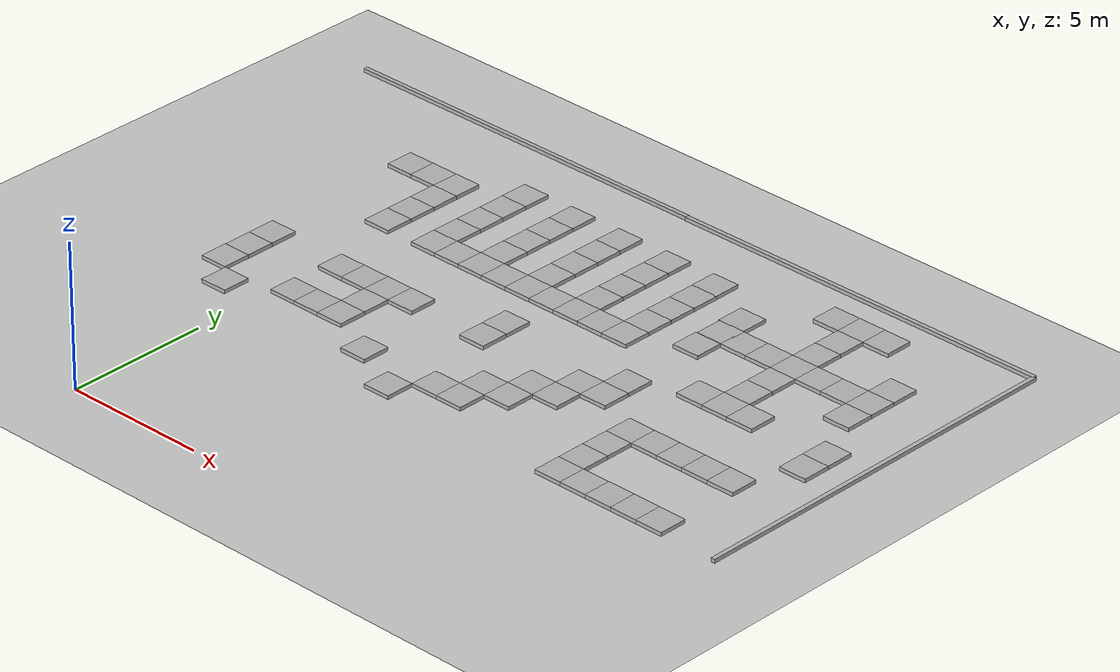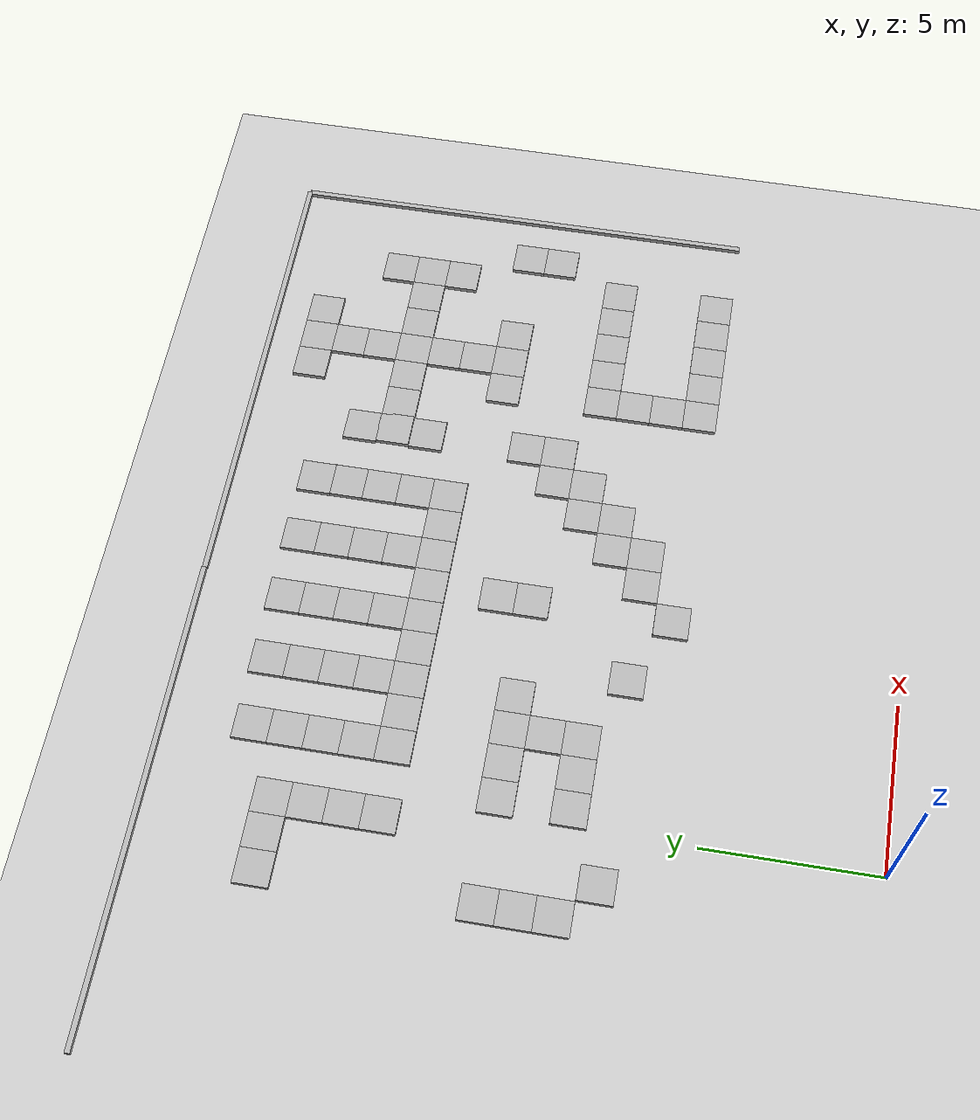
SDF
<sdf version="1.7">
 <world name="default">
  <model name="ground_plane">
   <static>1</static>
   <link name="link">
    <collision name="collision">
     <geometry><plane><normal>0 0 1</normal><size>100 100</size></plane></geometry>
     <surface>
      <contact><collide_bitmask>65535</collide_bitmask></contact>
      <friction><ode><mu>100</mu><mu2>50</mu2></ode></friction>
     </surface>
    </collision>
    <visual name="visual">
     <cast_shadows>0</cast_shadows>
     <geometry><plane><normal>0 0 1</normal><size>100 100</size></plane></geometry>
     <material>
      <script><uri>file://media/materials/scripts/gazebo.material</uri><name>Gazebo/Grey</name></script>
     </material>
    </visual>
   </link>
  </model>
  <model name="concrete_barrier_14m_3">
   <static>1</static>
   <link name="link">
    <collision name="concrete_barrier_14m_01">
     <pose>-0 0 0.3 0 -0 0</pose>
     <geometry><box><size>14 0.15 0.6</size></box></geometry>
    </collision>
    <visual name="concrete_barrier_14m_visual">
     <geometry><mesh><uri>model://concrete_barrier_14m/meshes/concrete_barrier_14m.dae</uri></mesh></geometry>
    </visual>
   </link>
   <pose>20 13 -3.1e-05 0 -0 0</pose>
  </model>
  <model name="concrete_barrier_14m_4">
   <static>1</static>
   <link name="link">
    <collision name="concrete_barrier_14m_01">
     <pose>-0 0 0.3 0 -0 0</pose>
     <geometry><box><size>14 0.15 0.6</size></box></geometry>
    </collision>
    <visual name="concrete_barrier_14m_visual">
     <geometry><mesh><uri>model://concrete_barrier_14m/meshes/concrete_barrier_14m.dae</uri></mesh></geometry>
    </visual>
   </link>
   <pose>13 20 0 0 0 -1.56953</pose>
  </model>
  <model name="concrete_cube_1m_18">
   <static>1</static>
   <link name="link">
    <collision name="concrete_cube_1m">
     <pose>-0 0 0.3 0 -0 0</pose>
     <geometry><box><size>1 1 0.6</size></box></geometry>
    </collision>
    <visual name="concrete_cube_1m_visual">
     <geometry><mesh><uri>model://concrete_cube_1m/meshes/concrete_cube_1m.dae</uri></mesh></geometry>
    </visual>
   </link>
   <pose>8.5 8.5 0 0 -0 0</pose>
  </model>
  <model name="concrete_cube_1m_19">
   <static>1</static>
   <link name="link">
    <collision name="concrete_cube_1m">
     <pose>-0 0 0.3 0 -0 0</pose>
     <geometry><box><size>1 1 0.6</size></box></geometry>
    </collision>
    <visual name="concrete_cube_1m_visual">
     <geometry><mesh><uri>model://concrete_cube_1m/meshes/concrete_cube_1m.dae</uri></mesh></geometry>
    </visual>
   </link>
   <pose>7.5 7.5 0 0 -0 0</pose>
  </model>
  <model name="concrete_cube_1m_20">
   <static>1</static>
   <link name="link">
    <collision name="concrete_cube_1m">
     <pose>-0 0 0.3 0 -0 0</pose>
     <geometry><box><size>1 1 0.6</size></box></geometry>
    </collision>
    <visual name="concrete_cube_1m_visual">
     <geometry><mesh><uri>model://concrete_cube_1m/meshes/concrete_cube_1m.dae</uri></mesh></geometry>
    </visual>
   </link>
   <pose>6.5 6.5 0 0 -0 0</pose>
  </model>
  <model name="concrete_cube_1m_24">
   <static>1</static>
   <link name="link">
    <collision name="concrete_cube_1m">
     <pose>-0 0 0.3 0 -0 0</pose>
     <geometry><box><size>1 1 0.6</size></box></geometry>
    </collision>
    <visual name="concrete_cube_1m_visual">
     <geometry><mesh><uri>model://concrete_cube_1m/meshes/concrete_cube_1m.dae</uri></mesh></geometry>
    </visual>
   </link>
   <pose>4.5 7.5 0 0 -0 0</pose>
  </model>
  <model name="concrete_cube_1m_36">
   <static>1</static>
   <link name="link">
    <collision name="concrete_cube_1m">
     <pose>-0 0 0.3 0 -0 0</pose>
     <geometry><box><size>1 1 0.6</size></box></geometry>
    </collision>
    <visual name="concrete_cube_1m_visual">
     <geometry><mesh><uri>model://concrete_cube_1m/meshes/concrete_cube_1m.dae</uri></mesh></geometry>
    </visual>
   </link>
   <pose>2.5 8.5 0 0 -0 0</pose>
  </model>
  <model name="concrete_cube_1m_37">
   <static>1</static>
   <link name="link">
    <collision name="concrete_cube_1m">
     <pose>-0 0 0.3 0 -0 0</pose>
     <geometry><box><size>1 1 0.6</size></box></geometry>
    </collision>
    <visual name="concrete_cube_1m_visual">
     <geometry><mesh><uri>model://concrete_cube_1m/meshes/concrete_cube_1m.dae</uri></mesh></geometry>
    </visual>
   </link>
   <pose>1.5 8.5 0 0 -0 0</pose>
  </model>
  <model name="concrete_cube_1m_38">
   <static>1</static>
   <link name="link">
    <collision name="concrete_cube_1m">
     <pose>-0 0 0.3 0 -0 0</pose>
     <geometry><box><size>1 1 0.6</size></box></geometry>
    </collision>
    <visual name="concrete_cube_1m_visual">
     <geometry><mesh><uri>model://concrete_cube_1m/meshes/concrete_cube_1m.dae</uri></mesh></geometry>
    </visual>
   </link>
   <pose>0.5 8.5 0 0 -0 0</pose>
  </model>
  <model name="concrete_cube_1m_59">
   <static>1</static>
   <link name="link">
    <collision name="concrete_cube_1m">
     <pose>-0 0 0.3 0 -0 0</pose>
     <geometry><box><size>1 1 0.6</size></box></geometry>
    </collision>
    <visual name="concrete_cube_1m_visual">
     <geometry><mesh><uri>model://concrete_cube_1m/meshes/concrete_cube_1m.dae</uri></mesh></geometry>
    </visual>
   </link>
   <pose>-1.46855 7.49755 0 0 -0 0</pose>
  </model>
  <model name="concrete_cube_1m_113">
   <static>1</static>
   <link name="link">
    <collision name="concrete_cube_1m">
     <pose>-0 0 0.3 0 -0 0</pose>
     <geometry><box><size>1 1 0.6</size></box></geometry>
    </collision>
    <visual name="concrete_cube_1m_visual">
     <geometry><mesh><uri>model://concrete_cube_1m/meshes/concrete_cube_1m.dae</uri></mesh></geometry>
    </visual>
   </link>
   <pose>14.5 14.5 0 0 -0 0</pose>
  </model>
  <model name="concrete_cube_1m_114">
   <static>1</static>
   <link name="link">
    <collision name="concrete_cube_1m">
     <pose>-0 0 0.3 0 -0 0</pose>
     <geometry><box><size>1 1 0.6</size></box></geometry>
    </collision>
    <visual name="concrete_cube_1m_visual">
     <geometry><mesh><uri>model://concrete_cube_1m/meshes/concrete_cube_1m.dae</uri></mesh></geometry>
    </visual>
   </link>
   <pose>14.5 13.5 0 0 -0 0</pose>
  </model>
  <model name="concrete_cube_1m_123">
   <static>1</static>
   <link name="link">
    <collision name="concrete_cube_1m">
     <pose>-0 0 0.3 0 -0 0</pose>
     <geometry><box><size>1 1 0.6</size></box></geometry>
    </collision>
    <visual name="concrete_cube_1m_visual">
     <geometry><mesh><uri>model://concrete_cube_1m/meshes/concrete_cube_1m.dae</uri></mesh></geometry>
    </visual>
   </link>
   <pose>9.5 9.5 0 0 -0 0</pose>
  </model>
  <model name="concrete_cube_1m_124">
   <static>1</static>
   <link name="link">
    <collision name="concrete_cube_1m">
     <pose>-0 0 0.3 0 -0 0</pose>
     <geometry><box><size>1 1 0.6</size></box></geometry>
    </collision>
    <visual name="concrete_cube_1m_visual">
     <geometry><mesh><uri>model://concrete_cube_1m/meshes/concrete_cube_1m.dae</uri></mesh></geometry>
    </visual>
   </link>
   <pose>10.5 10.5 0 0 -0 0</pose>
  </model>
  <model name="concrete_cube_1m_125">
   <static>1</static>
   <link name="link">
    <collision name="concrete_cube_1m">
     <pose>-0 0 0.3 0 -0 0</pose>
     <geometry><box><size>1 1 0.6</size></box></geometry>
    </collision>
    <visual name="concrete_cube_1m_visual">
     <geometry><mesh><uri>model://concrete_cube_1m/meshes/concrete_cube_1m.dae</uri></mesh></geometry>
    </visual>
   </link>
   <pose>10.5 9.5 0 0 -0 0</pose>
  </model>
  <model name="concrete_cube_1m_126">
   <static>1</static>
   <link name="link">
    <collision name="concrete_cube_1m">
     <pose>-0 0 0.3 0 -0 0</pose>
     <geometry><box><size>1 1 0.6</size></box></geometry>
    </collision>
    <visual name="concrete_cube_1m_visual">
     <geometry><mesh><uri>model://concrete_cube_1m/meshes/concrete_cube_1m.dae</uri></mesh></geometry>
    </visual>
   </link>
   <pose>9.5 8.5 0 0 -0 0</pose>
  </model>
  <model name="concrete_cube_1m_127">
   <static>1</static>
   <link name="link">
    <collision name="concrete_cube_1m">
     <pose>-0 0 0.3 0 -0 0</pose>
     <geometry><box><size>1 1 0.6</size></box></geometry>
    </collision>
    <visual name="concrete_cube_1m_visual">
     <geometry><mesh><uri>model://concrete_cube_1m/meshes/concrete_cube_1m.dae</uri></mesh></geometry>
    </visual>
   </link>
   <pose>8.5 7.5 0 0 -0 0</pose>
  </model>
  <model name="concrete_cube_1m_128">
   <static>1</static>
   <link name="link">
    <collision name="concrete_cube_1m">
     <pose>-0 0 0.3 0 -0 0</pose>
     <geometry><box><size>1 1 0.6</size></box></geometry>
    </collision>
    <visual name="concrete_cube_1m_visual">
     <geometry><mesh><uri>model://concrete_cube_1m/meshes/concrete_cube_1m.dae</uri></mesh></geometry>
    </visual>
   </link>
   <pose>11.5 10.5 0 0 -0 0</pose>
  </model>
  <model name="concrete_cube_1m_129">
   <static>1</static>
   <link name="link">
    <collision name="concrete_cube_1m">
     <pose>-0 0 0.3 0 -0 0</pose>
     <geometry><box><size>1 1 0.6</size></box></geometry>
    </collision>
    <visual name="concrete_cube_1m_visual">
     <geometry><mesh><uri>model://concrete_cube_1m/meshes/concrete_cube_1m.dae</uri></mesh></geometry>
    </visual>
   </link>
   <pose>11.5 11.5 0 0 -0 0</pose>
  </model>
  <model name="concrete_cube_1m_130">
   <static>1</static>
   <link name="link">
    <collision name="concrete_cube_1m">
     <pose>-0 0 0.3 0 -0 0</pose>
     <geometry><box><size>1 1 0.6</size></box></geometry>
    </collision>
    <visual name="concrete_cube_1m_visual">
     <geometry><mesh><uri>model://concrete_cube_1m/meshes/concrete_cube_1m.dae</uri></mesh></geometry>
    </visual>
   </link>
   <pose>2.5 9.5 0 0 -0 0</pose>
  </model>
  <model name="concrete_cube_1m_131">
   <static>1</static>
   <link name="link">
    <collision name="concrete_cube_1m">
     <pose>-0 0 0.3 0 -0 0</pose>
     <geometry><box><size>1 1 0.6</size></box></geometry>
    </collision>
    <visual name="concrete_cube_1m_visual">
     <geometry><mesh><uri>model://concrete_cube_1m/meshes/concrete_cube_1m.dae</uri></mesh></geometry>
    </visual>
   </link>
   <pose>2.5 10.5 0 0 -0 0</pose>
  </model>
  <model name="concrete_cube_1m_132">
   <static>1</static>
   <link name="link">
    <collision name="concrete_cube_1m">
     <pose>-0 0 0.3 0 -0 0</pose>
     <geometry><box><size>1 1 0.6</size></box></geometry>
    </collision>
    <visual name="concrete_cube_1m_visual">
     <geometry><mesh><uri>model://concrete_cube_1m/meshes/concrete_cube_1m.dae</uri></mesh></geometry>
    </visual>
   </link>
   <pose>1.5 10.5 0 0 -0 0</pose>
  </model>
  <model name="concrete_cube_1m_133">
   <static>1</static>
   <link name="link">
    <collision name="concrete_cube_1m">
     <pose>-0 0 0.3 0 -0 0</pose>
     <geometry><box><size>1 1 0.6</size></box></geometry>
    </collision>
    <visual name="concrete_cube_1m_visual">
     <geometry><mesh><uri>model://concrete_cube_1m/meshes/concrete_cube_1m.dae</uri></mesh></geometry>
    </visual>
   </link>
   <pose>0.5 10.5 0 0 -0 0</pose>
  </model>
  <model name="concrete_cube_1m_134">
   <static>1</static>
   <link name="link">
    <collision name="concrete_cube_1m">
     <pose>-0 0 0.3 0 -0 0</pose>
     <geometry><box><size>1 1 0.6</size></box></geometry>
    </collision>
    <visual name="concrete_cube_1m_visual">
     <geometry><mesh><uri>model://concrete_cube_1m/meshes/concrete_cube_1m.dae</uri></mesh></geometry>
    </visual>
   </link>
   <pose>3.5 10.5 0 0 -0 0</pose>
  </model>
  <model name="concrete_cube_1m_135">
   <static>1</static>
   <link name="link">
    <collision name="concrete_cube_1m">
     <pose>-0 0 0.3 0 -0 0</pose>
     <geometry><box><size>1 1 0.6</size></box></geometry>
    </collision>
    <visual name="concrete_cube_1m_visual">
     <geometry><mesh><uri>model://concrete_cube_1m/meshes/concrete_cube_1m.dae</uri></mesh></geometry>
    </visual>
   </link>
   <pose>9.5 13.5 0 0 -0 0</pose>
  </model>
  <model name="concrete_cube_1m_136">
   <static>1</static>
   <link name="link">
    <collision name="concrete_cube_1m">
     <pose>-0 0 0.3 0 -0 0</pose>
     <geometry><box><size>1 1 0.6</size></box></geometry>
    </collision>
    <visual name="concrete_cube_1m_visual">
     <geometry><mesh><uri>model://concrete_cube_1m/meshes/concrete_cube_1m.dae</uri></mesh></geometry>
    </visual>
   </link>
   <pose>8.5 13.5 0 0 -0 0</pose>
  </model>
  <model name="concrete_cube_1m_137">
   <static>1</static>
   <link name="link">
    <collision name="concrete_cube_1m">
     <pose>-0 0 0.3 0 -0 0</pose>
     <geometry><box><size>1 1 0.6</size></box></geometry>
    </collision>
    <visual name="concrete_cube_1m_visual">
     <geometry><mesh><uri>model://concrete_cube_1m/meshes/concrete_cube_1m.dae</uri></mesh></geometry>
    </visual>
   </link>
   <pose>7.5 13.5 0 0 -0 0</pose>
  </model>
  <model name="concrete_cube_1m_138">
   <static>1</static>
   <link name="link">
    <collision name="concrete_cube_1m">
     <pose>-0 0 0.3 0 -0 0</pose>
     <geometry><box><size>1 1 0.6</size></box></geometry>
    </collision>
    <visual name="concrete_cube_1m_visual">
     <geometry><mesh><uri>model://concrete_cube_1m/meshes/concrete_cube_1m.dae</uri></mesh></geometry>
    </visual>
   </link>
   <pose>6.5 13.5 0 0 -0 0</pose>
  </model>
  <model name="concrete_cube_1m_139">
   <static>1</static>
   <link name="link">
    <collision name="concrete_cube_1m">
     <pose>-0 0 0.3 0 -0 0</pose>
     <geometry><box><size>1 1 0.6</size></box></geometry>
    </collision>
    <visual name="concrete_cube_1m_visual">
     <geometry><mesh><uri>model://concrete_cube_1m/meshes/concrete_cube_1m.dae</uri></mesh></geometry>
    </visual>
   </link>
   <pose>5.5 13.5 0 0 -0 0</pose>
  </model>
  <model name="concrete_cube_1m_140">
   <static>1</static>
   <link name="link">
    <collision name="concrete_cube_1m">
     <pose>-0 0 0.3 0 -0 0</pose>
     <geometry><box><size>1 1 0.6</size></box></geometry>
    </collision>
    <visual name="concrete_cube_1m_visual">
     <geometry><mesh><uri>model://concrete_cube_1m/meshes/concrete_cube_1m.dae</uri></mesh></geometry>
    </visual>
   </link>
   <pose>4.5 13.5 0 0 -0 0</pose>
  </model>
  <model name="concrete_cube_1m_141">
   <static>1</static>
   <link name="link">
    <collision name="concrete_cube_1m">
     <pose>-0 0 0.3 0 -0 0</pose>
     <geometry><box><size>1 1 0.6</size></box></geometry>
    </collision>
    <visual name="concrete_cube_1m_visual">
     <geometry><mesh><uri>model://concrete_cube_1m/meshes/concrete_cube_1m.dae</uri></mesh></geometry>
    </visual>
   </link>
   <pose>3.5 13.5 0 0 -0 0</pose>
  </model>
  <model name="concrete_cube_1m_142">
   <static>1</static>
   <link name="link">
    <collision name="concrete_cube_1m">
     <pose>-0 0 0.3 0 -0 0</pose>
     <geometry><box><size>1 1 0.6</size></box></geometry>
    </collision>
    <visual name="concrete_cube_1m_visual">
     <geometry><mesh><uri>model://concrete_cube_1m/meshes/concrete_cube_1m.dae</uri></mesh></geometry>
    </visual>
   </link>
   <pose>2.5 13.5 0 0 -0 0</pose>
  </model>
  <model name="concrete_cube_1m_143">
   <static>1</static>
   <link name="link">
    <collision name="concrete_cube_1m">
     <pose>-0 0 0.3 0 -0 0</pose>
     <geometry><box><size>1 1 0.6</size></box></geometry>
    </collision>
    <visual name="concrete_cube_1m_visual">
     <geometry><mesh><uri>model://concrete_cube_1m/meshes/concrete_cube_1m.dae</uri></mesh></geometry>
    </visual>
   </link>
   <pose>6.5 10.5 0 0 -0 0</pose>
  </model>
  <model name="concrete_cube_1m_144">
   <static>1</static>
   <link name="link">
    <collision name="concrete_cube_1m">
     <pose>-0 0 0.3 0 -0 0</pose>
     <geometry><box><size>1 1 0.6</size></box></geometry>
    </collision>
    <visual name="concrete_cube_1m_visual">
     <geometry><mesh><uri>model://concrete_cube_1m/meshes/concrete_cube_1m.dae</uri></mesh></geometry>
    </visual>
   </link>
   <pose>6.5 11.5 0 0 -0 0</pose>
  </model>
  <model name="concrete_cube_1m_147">
   <static>1</static>
   <link name="link">
    <collision name="concrete_cube_1m">
     <pose>-0 0 0.3 0 -0 0</pose>
     <geometry><box><size>1 1 0.6</size></box></geometry>
    </collision>
    <visual name="concrete_cube_1m_visual">
     <geometry><mesh><uri>model://concrete_cube_1m/meshes/concrete_cube_1m.dae</uri></mesh></geometry>
    </visual>
   </link>
   <pose>13.5 6.5 0 0 -0 0</pose>
  </model>
  <model name="concrete_cube_1m_148">
   <static>1</static>
   <link name="link">
    <collision name="concrete_cube_1m">
     <pose>-0 0 0.3 0 -0 0</pose>
     <geometry><box><size>1 1 0.6</size></box></geometry>
    </collision>
    <visual name="concrete_cube_1m_visual">
     <geometry><mesh><uri>model://concrete_cube_1m/meshes/concrete_cube_1m.dae</uri></mesh></geometry>
    </visual>
   </link>
   <pose>13.5 7.5 0 0 -0 0</pose>
  </model>
  <model name="concrete_cube_1m_149">
   <static>1</static>
   <link name="link">
    <collision name="concrete_cube_1m">
     <pose>-0 0 0.3 0 -0 0</pose>
     <geometry><box><size>1 1 0.6</size></box></geometry>
    </collision>
    <visual name="concrete_cube_1m_visual">
     <geometry><mesh><uri>model://concrete_cube_1m/meshes/concrete_cube_1m.dae</uri></mesh></geometry>
    </visual>
   </link>
   <pose>13.5 8.5 0 0 -0 0</pose>
  </model>
  <model name="concrete_cube_1m_150">
   <static>1</static>
   <link name="link">
    <collision name="concrete_cube_1m">
     <pose>-0 0 0.3 0 -0 0</pose>
     <geometry><box><size>1 1 0.6</size></box></geometry>
    </collision>
    <visual name="concrete_cube_1m_visual">
     <geometry><mesh><uri>model://concrete_cube_1m/meshes/concrete_cube_1m.dae</uri></mesh></geometry>
    </visual>
   </link>
   <pose>13.5 9.5 0 0 -0 0</pose>
  </model>
  <model name="concrete_cube_1m_151">
   <static>1</static>
   <link name="link">
    <collision name="concrete_cube_1m">
     <pose>-0 0 0.3 0 -0 0</pose>
     <geometry><box><size>1 1 0.6</size></box></geometry>
    </collision>
    <visual name="concrete_cube_1m_visual">
     <geometry><mesh><uri>model://concrete_cube_1m/meshes/concrete_cube_1m.dae</uri></mesh></geometry>
    </visual>
   </link>
   <pose>1.5 13.5 0 0 -0 0</pose>
  </model>
  <model name="concrete_cube_1m_160">
   <static>1</static>
   <link name="link">
    <collision name="concrete_cube_1m">
     <pose>-0 0 0.3 0 -0 0</pose>
     <geometry><box><size>1 1 0.6</size></box></geometry>
    </collision>
    <visual name="concrete_cube_1m_visual">
     <geometry><mesh><uri>model://concrete_cube_1m/meshes/concrete_cube_1m.dae</uri></mesh></geometry>
    </visual>
   </link>
   <pose>-2.5 8.5 0 0 -0 0</pose>
  </model>
  <model name="concrete_cube_1m_161">
   <static>1</static>
   <link name="link">
    <collision name="concrete_cube_1m">
     <pose>-0 0 0.3 0 -0 0</pose>
     <geometry><box><size>1 1 0.6</size></box></geometry>
    </collision>
    <visual name="concrete_cube_1m_visual">
     <geometry><mesh><uri>model://concrete_cube_1m/meshes/concrete_cube_1m.dae</uri></mesh></geometry>
    </visual>
   </link>
   <pose>-2.5 9.5 0 0 -0 0</pose>
  </model>
  <model name="concrete_cube_1m_162">
   <static>1</static>
   <link name="link">
    <collision name="concrete_cube_1m">
     <pose>-0 0 0.3 0 -0 0</pose>
     <geometry><box><size>1 1 0.6</size></box></geometry>
    </collision>
    <visual name="concrete_cube_1m_visual">
     <geometry><mesh><uri>model://concrete_cube_1m/meshes/concrete_cube_1m.dae</uri></mesh></geometry>
    </visual>
   </link>
   <pose>-2.5 10.5 0 0 -0 0</pose>
  </model>
  <model name="concrete_cube_1m_181">
   <static>1</static>
   <link name="link">
    <collision name="concrete_cube_1m">
     <pose>-0 0 0.3 0 -0 0</pose>
     <geometry><box><size>1 1 0.6</size></box></geometry>
    </collision>
    <visual name="concrete_cube_1m_visual">
     <geometry><mesh><uri>model://concrete_cube_1m/meshes/concrete_cube_1m.dae</uri></mesh></geometry>
    </visual>
   </link>
   <pose>-0.5 13.5 0 0 -0 0</pose>
  </model>
  <model name="concrete_cube_1m_182">
   <static>1</static>
   <link name="link">
    <collision name="concrete_cube_1m">
     <pose>-0 0 0.3 0 -0 0</pose>
     <geometry><box><size>1 1 0.6</size></box></geometry>
    </collision>
    <visual name="concrete_cube_1m_visual">
     <geometry><mesh><uri>model://concrete_cube_1m/meshes/concrete_cube_1m.dae</uri></mesh></geometry>
    </visual>
   </link>
   <pose>-0.5 14.5 0 0 -0 0</pose>
  </model>
  <model name="concrete_barrier_14m_4_clone">
   <static>1</static>
   <link name="link">
    <collision name="concrete_barrier_14m_01">
     <pose>-0 0 0.3 0 -0 0</pose>
     <geometry><box><size>14 0.15 0.6</size></box></geometry>
    </collision>
    <visual name="concrete_barrier_14m_visual">
     <geometry><mesh><uri>model://concrete_barrier_14m/meshes/concrete_barrier_14m.dae</uri></mesh></geometry>
    </visual>
   </link>
   <pose>-1 20 0 0 0 -1.56953</pose>
  </model>
  <model name="concrete_cube_1m_246">
   <static>1</static>
   <link name="link">
    <collision name="concrete_cube_1m">
     <pose>-0 0 0.3 0 -0 0</pose>
     <geometry><box><size>1 1 0.6</size></box></geometry>
    </collision>
    <visual name="concrete_cube_1m_visual">
     <geometry><mesh><uri>model://concrete_cube_1m/meshes/concrete_cube_1m.dae</uri></mesh></geometry>
    </visual>
   </link>
   <pose>-0.5 15.5 0 0 -0 0</pose>
  </model>
  <model name="concrete_cube_1m_247">
   <static>1</static>
   <link name="link">
    <collision name="concrete_cube_1m">
     <pose>-0 0 0.3 0 -0 0</pose>
     <geometry><box><size>1 1 0.6</size></box></geometry>
    </collision>
    <visual name="concrete_cube_1m_visual">
     <geometry><mesh><uri>model://concrete_cube_1m/meshes/concrete_cube_1m.dae</uri></mesh></geometry>
    </visual>
   </link>
   <pose>-0.5 16.5 0 0 -0 0</pose>
  </model>
  <model name="concrete_cube_1m_248">
   <static>1</static>
   <link name="link">
    <collision name="concrete_cube_1m">
     <pose>-0 0 0.3 0 -0 0</pose>
     <geometry><box><size>1 1 0.6</size></box></geometry>
    </collision>
    <visual name="concrete_cube_1m_visual">
     <geometry><mesh><uri>model://concrete_cube_1m/meshes/concrete_cube_1m.dae</uri></mesh></geometry>
    </visual>
   </link>
   <pose>14.5 15.5 0 0 -0 0</pose>
  </model>
  <model name="concrete_cube_1m_249">
   <static>1</static>
   <link name="link">
    <collision name="concrete_cube_1m">
     <pose>-0 0 0.3 0 -0 0</pose>
     <geometry><box><size>1 1 0.6</size></box></geometry>
    </collision>
    <visual name="concrete_cube_1m_visual">
     <geometry><mesh><uri>model://concrete_cube_1m/meshes/concrete_cube_1m.dae</uri></mesh></geometry>
    </visual>
   </link>
   <pose>14.5 16.5 0 0 -0 0</pose>
  </model>
  <model name="concrete_cube_1m_250">
   <static>1</static>
   <link name="link">
    <collision name="concrete_cube_1m">
     <pose>-0 0 0.3 0 -0 0</pose>
     <geometry><box><size>1 1 0.6</size></box></geometry>
    </collision>
    <visual name="concrete_cube_1m_visual">
     <geometry><mesh><uri>model://concrete_cube_1m/meshes/concrete_cube_1m.dae</uri></mesh></geometry>
    </visual>
   </link>
   <pose>9.5 14.5 0 0 -0 0</pose>
  </model>
  <model name="concrete_cube_1m_251">
   <static>1</static>
   <link name="link">
    <collision name="concrete_cube_1m">
     <pose>-0 0 0.3 0 -0 0</pose>
     <geometry><box><size>1 1 0.6</size></box></geometry>
    </collision>
    <visual name="concrete_cube_1m_visual">
     <geometry><mesh><uri>model://concrete_cube_1m/meshes/concrete_cube_1m.dae</uri></mesh></geometry>
    </visual>
   </link>
   <pose>9.5 15.5 0 0 -0 0</pose>
  </model>
  <model name="concrete_cube_1m_252">
   <static>1</static>
   <link name="link">
    <collision name="concrete_cube_1m">
     <pose>-0 0 0.3 0 -0 0</pose>
     <geometry><box><size>1 1 0.6</size></box></geometry>
    </collision>
    <visual name="concrete_cube_1m_visual">
     <geometry><mesh><uri>model://concrete_cube_1m/meshes/concrete_cube_1m.dae</uri></mesh></geometry>
    </visual>
   </link>
   <pose>9.5 16.5 0 0 -0 0</pose>
  </model>
  <model name="concrete_cube_1m_253">
   <static>1</static>
   <link name="link">
    <collision name="concrete_cube_1m">
     <pose>-0 0 0.3 0 -0 0</pose>
     <geometry><box><size>1 1 0.6</size></box></geometry>
    </collision>
    <visual name="concrete_cube_1m_visual">
     <geometry><mesh><uri>model://concrete_cube_1m/meshes/concrete_cube_1m.dae</uri></mesh></geometry>
    </visual>
   </link>
   <pose>9.4922 17.4677 0 0 -0 0</pose>
  </model>
  <model name="concrete_cube_1m_254">
   <static>1</static>
   <link name="link">
    <collision name="concrete_cube_1m">
     <pose>-0 0 0.3 0 -0 0</pose>
     <geometry><box><size>1 1 0.6</size></box></geometry>
    </collision>
    <visual name="concrete_cube_1m_visual">
     <geometry><mesh><uri>model://concrete_cube_1m/meshes/concrete_cube_1m.dae</uri></mesh></geometry>
    </visual>
   </link>
   <pose>14.5 9.5 0 0 -0 0</pose>
  </model>
  <model name="concrete_cube_1m_255">
   <static>1</static>
   <link name="link">
    <collision name="concrete_cube_1m">
     <pose>-0 0 0.3 0 -0 0</pose>
     <geometry><box><size>1 1 0.6</size></box></geometry>
    </collision>
    <visual name="concrete_cube_1m_visual">
     <geometry><mesh><uri>model://concrete_cube_1m/meshes/concrete_cube_1m.dae</uri></mesh></geometry>
    </visual>
   </link>
   <pose>14.5 6.5 0 0 -0 0</pose>
  </model>
  <model name="concrete_cube_1m_256">
   <static>1</static>
   <link name="link">
    <collision name="concrete_cube_1m">
     <pose>-0 0 0.3 0 -0 0</pose>
     <geometry><box><size>1 1 0.6</size></box></geometry>
    </collision>
    <visual name="concrete_cube_1m_visual">
     <geometry><mesh><uri>model://concrete_cube_1m/meshes/concrete_cube_1m.dae</uri></mesh></geometry>
    </visual>
   </link>
   <pose>15.5 6.5 0 0 -0 0</pose>
  </model>
  <model name="concrete_cube_1m_257">
   <static>1</static>
   <link name="link">
    <collision name="concrete_cube_1m">
     <pose>-0 0 0.3 0 -0 0</pose>
     <geometry><box><size>1 1 0.6</size></box></geometry>
    </collision>
    <visual name="concrete_cube_1m_visual">
     <geometry><mesh><uri>model://concrete_cube_1m/meshes/concrete_cube_1m.dae</uri></mesh></geometry>
    </visual>
   </link>
   <pose>16.5 6.5 0 0 -0 0</pose>
  </model>
  <model name="concrete_cube_1m_258">
   <static>1</static>
   <link name="link">
    <collision name="concrete_cube_1m">
     <pose>-0 0 0.3 0 -0 0</pose>
     <geometry><box><size>1 1 0.6</size></box></geometry>
    </collision>
    <visual name="concrete_cube_1m_visual">
     <geometry><mesh><uri>model://concrete_cube_1m/meshes/concrete_cube_1m.dae</uri></mesh></geometry>
    </visual>
   </link>
   <pose>17.5 6.5 0 0 -0 0</pose>
  </model>
  <model name="concrete_cube_1m_259">
   <static>1</static>
   <link name="link">
    <collision name="concrete_cube_1m">
     <pose>-0 0 0.3 0 -0 0</pose>
     <geometry><box><size>1 1 0.6</size></box></geometry>
    </collision>
    <visual name="concrete_cube_1m_visual">
     <geometry><mesh><uri>model://concrete_cube_1m/meshes/concrete_cube_1m.dae</uri></mesh></geometry>
    </visual>
   </link>
   <pose>15.5 9.5 0 0 -0 0</pose>
  </model>
  <model name="concrete_cube_1m_260">
   <static>1</static>
   <link name="link">
    <collision name="concrete_cube_1m">
     <pose>-0 0 0.3 0 -0 0</pose>
     <geometry><box><size>1 1 0.6</size></box></geometry>
    </collision>
    <visual name="concrete_cube_1m_visual">
     <geometry><mesh><uri>model://concrete_cube_1m/meshes/concrete_cube_1m.dae</uri></mesh></geometry>
    </visual>
   </link>
   <pose>16.5 9.5 0 0 -0 0</pose>
  </model>
  <model name="concrete_cube_1m_261">
   <static>1</static>
   <link name="link">
    <collision name="concrete_cube_1m">
     <pose>-0 0 0.3 0 -0 0</pose>
     <geometry><box><size>1 1 0.6</size></box></geometry>
    </collision>
    <visual name="concrete_cube_1m_visual">
     <geometry><mesh><uri>model://concrete_cube_1m/meshes/concrete_cube_1m.dae</uri></mesh></geometry>
    </visual>
   </link>
   <pose>17.5 9.5 0 0 -0 0</pose>
  </model>
  <model name="concrete_cube_1m_268">
   <static>1</static>
   <link name="link">
    <collision name="concrete_cube_1m">
     <pose>-0 0 0.3 0 -0 0</pose>
     <geometry><box><size>1 1 0.6</size></box></geometry>
    </collision>
    <visual name="concrete_cube_1m_visual">
     <geometry><mesh><uri>model://concrete_cube_1m/meshes/concrete_cube_1m.dae</uri></mesh></geometry>
    </visual>
   </link>
   <pose>14.5 17.5 0 0 -0 0</pose>
  </model>
  <model name="concrete_cube_1m_269">
   <static>1</static>
   <link name="link">
    <collision name="concrete_cube_1m">
     <pose>-0 0 0.3 0 -0 0</pose>
     <geometry><box><size>1 1 0.6</size></box></geometry>
    </collision>
    <visual name="concrete_cube_1m_visual">
     <geometry><mesh><uri>model://concrete_cube_1m/meshes/concrete_cube_1m.dae</uri></mesh></geometry>
    </visual>
   </link>
   <pose>15.5 15.5 0 0 -0 0</pose>
  </model>
  <model name="concrete_cube_1m_270">
   <static>1</static>
   <link name="link">
    <collision name="concrete_cube_1m">
     <pose>-0 0 0.3 0 -0 0</pose>
     <geometry><box><size>1 1 0.6</size></box></geometry>
    </collision>
    <visual name="concrete_cube_1m_visual">
     <geometry><mesh><uri>model://concrete_cube_1m/meshes/concrete_cube_1m.dae</uri></mesh></geometry>
    </visual>
   </link>
   <pose>16.5 15.5 0 0 -0 0</pose>
  </model>
  <model name="concrete_cube_1m_271">
   <static>1</static>
   <link name="link">
    <collision name="concrete_cube_1m">
     <pose>-0 0 0.3 0 -0 0</pose>
     <geometry><box><size>1 1 0.6</size></box></geometry>
    </collision>
    <visual name="concrete_cube_1m_visual">
     <geometry><mesh><uri>model://concrete_cube_1m/meshes/concrete_cube_1m.dae</uri></mesh></geometry>
    </visual>
   </link>
   <pose>17.5 15.5 0 0 -0 0</pose>
  </model>
  <model name="concrete_cube_1m_272">
   <static>1</static>
   <link name="link">
    <collision name="concrete_cube_1m">
     <pose>-0 0 0.3 0 -0 0</pose>
     <geometry><box><size>1 1 0.6</size></box></geometry>
    </collision>
    <visual name="concrete_cube_1m_visual">
     <geometry><mesh><uri>model://concrete_cube_1m/meshes/concrete_cube_1m.dae</uri></mesh></geometry>
    </visual>
   </link>
   <pose>13.5 15.5 0 0 -0 0</pose>
  </model>
  <model name="concrete_cube_1m_273">
   <static>1</static>
   <link name="link">
    <collision name="concrete_cube_1m">
     <pose>-0 0 0.3 0 -0 0</pose>
     <geometry><box><size>1 1 0.6</size></box></geometry>
    </collision>
    <visual name="concrete_cube_1m_visual">
     <geometry><mesh><uri>model://concrete_cube_1m/meshes/concrete_cube_1m.dae</uri></mesh></geometry>
    </visual>
   </link>
   <pose>12.5 15.5 0 0 -0 0</pose>
  </model>
  <model name="concrete_cube_1m_274">
   <static>1</static>
   <link name="link">
    <collision name="concrete_cube_1m">
     <pose>-0 0 0.3 0 -0 0</pose>
     <geometry><box><size>1 1 0.6</size></box></geometry>
    </collision>
    <visual name="concrete_cube_1m_visual">
     <geometry><mesh><uri>model://concrete_cube_1m/meshes/concrete_cube_1m.dae</uri></mesh></geometry>
    </visual>
   </link>
   <pose>11.5431 15.5169 0 0 -0 0</pose>
  </model>
  <model name="concrete_cube_1m_275">
   <static>1</static>
   <link name="link">
    <collision name="concrete_cube_1m">
     <pose>-0 0 0.3 0 -0 0</pose>
     <geometry><box><size>1 1 0.6</size></box></geometry>
    </collision>
    <visual name="concrete_cube_1m_visual">
     <geometry><mesh><uri>model://concrete_cube_1m/meshes/concrete_cube_1m.dae</uri></mesh></geometry>
    </visual>
   </link>
   <pose>14.5 12.5 0 0 -0 0</pose>
  </model>
  <model name="concrete_cube_1m_276">
   <static>1</static>
   <link name="link">
    <collision name="concrete_cube_1m">
     <pose>-0 0 0.3 0 -0 0</pose>
     <geometry><box><size>1 1 0.6</size></box></geometry>
    </collision>
    <visual name="concrete_cube_1m_visual">
     <geometry><mesh><uri>model://concrete_cube_1m/meshes/concrete_cube_1m.dae</uri></mesh></geometry>
    </visual>
   </link>
   <pose>14.5 18.5 0 0 -0 0</pose>
  </model>
  <model name="concrete_cube_1m_277">
   <static>1</static>
   <link name="link">
    <collision name="concrete_cube_1m">
     <pose>-0 0 0.3 0 -0 0</pose>
     <geometry><box><size>1 1 0.6</size></box></geometry>
    </collision>
    <visual name="concrete_cube_1m_visual">
     <geometry><mesh><uri>model://concrete_cube_1m/meshes/concrete_cube_1m.dae</uri></mesh></geometry>
    </visual>
   </link>
   <pose>17.5 14.5 0 0 -0 0</pose>
  </model>
  <model name="concrete_cube_1m_278">
   <static>1</static>
   <link name="link">
    <collision name="concrete_cube_1m">
     <pose>-0 0 0.3 0 -0 0</pose>
     <geometry><box><size>1 1 0.6</size></box></geometry>
    </collision>
    <visual name="concrete_cube_1m_visual">
     <geometry><mesh><uri>model://concrete_cube_1m/meshes/concrete_cube_1m.dae</uri></mesh></geometry>
    </visual>
   </link>
   <pose>17.5 16.5 0 0 -0 0</pose>
  </model>
  <model name="concrete_cube_1m_279">
   <static>1</static>
   <link name="link">
    <collision name="concrete_cube_1m">
     <pose>-0 0 0.3 0 -0 0</pose>
     <geometry><box><size>1 1 0.6</size></box></geometry>
    </collision>
    <visual name="concrete_cube_1m_visual">
     <geometry><mesh><uri>model://concrete_cube_1m/meshes/concrete_cube_1m.dae</uri></mesh></geometry>
    </visual>
   </link>
   <pose>13.5 12.5 0 0 -0 0</pose>
  </model>
  <model name="concrete_cube_1m_280">
   <static>1</static>
   <link name="link">
    <collision name="concrete_cube_1m">
     <pose>-0 0 0.3 0 -0 0</pose>
     <geometry><box><size>1 1 0.6</size></box></geometry>
    </collision>
    <visual name="concrete_cube_1m_visual">
     <geometry><mesh><uri>model://concrete_cube_1m/meshes/concrete_cube_1m.dae</uri></mesh></geometry>
    </visual>
   </link>
   <pose>15.5 12.5 0 0 -0 0</pose>
  </model>
  <model name="concrete_cube_1m_281">
   <static>1</static>
   <link name="link">
    <collision name="concrete_cube_1m">
     <pose>-0 0 0.3 0 -0 0</pose>
     <geometry><box><size>1 1 0.6</size></box></geometry>
    </collision>
    <visual name="concrete_cube_1m_visual">
     <geometry><mesh><uri>model://concrete_cube_1m/meshes/concrete_cube_1m.dae</uri></mesh></geometry>
    </visual>
   </link>
   <pose>11.5 14.5 0 0 -0 0</pose>
  </model>
  <model name="concrete_cube_1m_282">
   <static>1</static>
   <link name="link">
    <collision name="concrete_cube_1m">
     <pose>-0 0 0.3 0 -0 0</pose>
     <geometry><box><size>1 1 0.6</size></box></geometry>
    </collision>
    <visual name="concrete_cube_1m_visual">
     <geometry><mesh><uri>model://concrete_cube_1m/meshes/concrete_cube_1m.dae</uri></mesh></geometry>
    </visual>
   </link>
   <pose>11.5 16.5 0 0 -0 0</pose>
  </model>
  <model name="concrete_cube_1m_283">
   <static>1</static>
   <link name="link">
    <collision name="concrete_cube_1m">
     <pose>-0 0 0.3 0 -0 0</pose>
     <geometry><box><size>1 1 0.6</size></box></geometry>
    </collision>
    <visual name="concrete_cube_1m_visual">
     <geometry><mesh><uri>model://concrete_cube_1m/meshes/concrete_cube_1m.dae</uri></mesh></geometry>
    </visual>
   </link>
   <pose>13.5 18.5 0 0 -0 0</pose>
  </model>
  <model name="concrete_cube_1m_284">
   <static>1</static>
   <link name="link">
    <collision name="concrete_cube_1m">
     <pose>-0 0 0.3 0 -0 0</pose>
     <geometry><box><size>1 1 0.6</size></box></geometry>
    </collision>
    <visual name="concrete_cube_1m_visual">
     <geometry><mesh><uri>model://concrete_cube_1m/meshes/concrete_cube_1m.dae</uri></mesh></geometry>
    </visual>
   </link>
   <pose>15.5 18.5 0 0 -0 0</pose>
  </model>
  <model name="concrete_cube_1m_285">
   <static>1</static>
   <link name="link">
    <collision name="concrete_cube_1m">
     <pose>-0 0 0.3 0 -0 0</pose>
     <geometry><box><size>1 1 0.6</size></box></geometry>
    </collision>
    <visual name="concrete_cube_1m_visual">
     <geometry><mesh><uri>model://concrete_cube_1m/meshes/concrete_cube_1m.dae</uri></mesh></geometry>
    </visual>
   </link>
   <pose>7.5 14.5 0 0 -0 0</pose>
  </model>
  <model name="concrete_cube_1m_286">
   <static>1</static>
   <link name="link">
    <collision name="concrete_cube_1m">
     <pose>-0 0 0.3 0 -0 0</pose>
     <geometry><box><size>1 1 0.6</size></box></geometry>
    </collision>
    <visual name="concrete_cube_1m_visual">
     <geometry><mesh><uri>model://concrete_cube_1m/meshes/concrete_cube_1m.dae</uri></mesh></geometry>
    </visual>
   </link>
   <pose>7.5 15.5 0 0 -0 0</pose>
  </model>
  <model name="concrete_cube_1m_287">
   <static>1</static>
   <link name="link">
    <collision name="concrete_cube_1m">
     <pose>-0 0 0.3 0 -0 0</pose>
     <geometry><box><size>1 1 0.6</size></box></geometry>
    </collision>
    <visual name="concrete_cube_1m_visual">
     <geometry><mesh><uri>model://concrete_cube_1m/meshes/concrete_cube_1m.dae</uri></mesh></geometry>
    </visual>
   </link>
   <pose>7.5 16.5 0 0 -0 0</pose>
  </model>
  <model name="concrete_cube_1m_288">
   <static>1</static>
   <link name="link">
    <collision name="concrete_cube_1m">
     <pose>-0 0 0.3 0 -0 0</pose>
     <geometry><box><size>1 1 0.6</size></box></geometry>
    </collision>
    <visual name="concrete_cube_1m_visual">
     <geometry><mesh><uri>model://concrete_cube_1m/meshes/concrete_cube_1m.dae</uri></mesh></geometry>
    </visual>
   </link>
   <pose>7.5 17.5 0 0 -0 0</pose>
  </model>
  <model name="concrete_cube_1m_289">
   <static>1</static>
   <link name="link">
    <collision name="concrete_cube_1m">
     <pose>-0 0 0.3 0 -0 0</pose>
     <geometry><box><size>1 1 0.6</size></box></geometry>
    </collision>
    <visual name="concrete_cube_1m_visual">
     <geometry><mesh><uri>model://concrete_cube_1m/meshes/concrete_cube_1m.dae</uri></mesh></geometry>
    </visual>
   </link>
   <pose>5.5 14.5 0 0 -0 0</pose>
  </model>
  <model name="concrete_cube_1m_290">
   <static>1</static>
   <link name="link">
    <collision name="concrete_cube_1m">
     <pose>-0 0 0.3 0 -0 0</pose>
     <geometry><box><size>1 1 0.6</size></box></geometry>
    </collision>
    <visual name="concrete_cube_1m_visual">
     <geometry><mesh><uri>model://concrete_cube_1m/meshes/concrete_cube_1m.dae</uri></mesh></geometry>
    </visual>
   </link>
   <pose>5.5 15.5 0 0 -0 0</pose>
  </model>
  <model name="concrete_cube_1m_291">
   <static>1</static>
   <link name="link">
    <collision name="concrete_cube_1m">
     <pose>-0 0 0.3 0 -0 0</pose>
     <geometry><box><size>1 1 0.6</size></box></geometry>
    </collision>
    <visual name="concrete_cube_1m_visual">
     <geometry><mesh><uri>model://concrete_cube_1m/meshes/concrete_cube_1m.dae</uri></mesh></geometry>
    </visual>
   </link>
   <pose>5.5 16.5 0 0 -0 0</pose>
  </model>
  <model name="concrete_cube_1m_292">
   <static>1</static>
   <link name="link">
    <collision name="concrete_cube_1m">
     <pose>-0 0 0.3 0 -0 0</pose>
     <geometry><box><size>1 1 0.6</size></box></geometry>
    </collision>
    <visual name="concrete_cube_1m_visual">
     <geometry><mesh><uri>model://concrete_cube_1m/meshes/concrete_cube_1m.dae</uri></mesh></geometry>
    </visual>
   </link>
   <pose>5.5 17.5 0 0 -0 0</pose>
  </model>
  <model name="concrete_cube_1m_293">
   <static>1</static>
   <link name="link">
    <collision name="concrete_cube_1m">
     <pose>-0 0 0.3 0 -0 0</pose>
     <geometry><box><size>1 1 0.6</size></box></geometry>
    </collision>
    <visual name="concrete_cube_1m_visual">
     <geometry><mesh><uri>model://concrete_cube_1m/meshes/concrete_cube_1m.dae</uri></mesh></geometry>
    </visual>
   </link>
   <pose>3.5 14.5 0 0 -0 0</pose>
  </model>
  <model name="concrete_cube_1m_294">
   <static>1</static>
   <link name="link">
    <collision name="concrete_cube_1m">
     <pose>-0 0 0.3 0 -0 0</pose>
     <geometry><box><size>1 1 0.6</size></box></geometry>
    </collision>
    <visual name="concrete_cube_1m_visual">
     <geometry><mesh><uri>model://concrete_cube_1m/meshes/concrete_cube_1m.dae</uri></mesh></geometry>
    </visual>
   </link>
   <pose>3.5 15.5 0 0 -0 0</pose>
  </model>
  <model name="concrete_cube_1m_295">
   <static>1</static>
   <link name="link">
    <collision name="concrete_cube_1m">
     <pose>-0 0 0.3 0 -0 0</pose>
     <geometry><box><size>1 1 0.6</size></box></geometry>
    </collision>
    <visual name="concrete_cube_1m_visual">
     <geometry><mesh><uri>model://concrete_cube_1m/meshes/concrete_cube_1m.dae</uri></mesh></geometry>
    </visual>
   </link>
   <pose>3.5 16.5 0 0 -0 0</pose>
  </model>
  <model name="concrete_cube_1m_296">
   <static>1</static>
   <link name="link">
    <collision name="concrete_cube_1m">
     <pose>-0 0 0.3 0 -0 0</pose>
     <geometry><box><size>1 1 0.6</size></box></geometry>
    </collision>
    <visual name="concrete_cube_1m_visual">
     <geometry><mesh><uri>model://concrete_cube_1m/meshes/concrete_cube_1m.dae</uri></mesh></geometry>
    </visual>
   </link>
   <pose>3.5 17.5 0 0 -0 0</pose>
  </model>
  <model name="concrete_cube_1m_297">
   <static>1</static>
   <link name="link">
    <collision name="concrete_cube_1m">
     <pose>-0 0 0.3 0 -0 0</pose>
     <geometry><box><size>1 1 0.6</size></box></geometry>
    </collision>
    <visual name="concrete_cube_1m_visual">
     <geometry><mesh><uri>model://concrete_cube_1m/meshes/concrete_cube_1m.dae</uri></mesh></geometry>
    </visual>
   </link>
   <pose>1.5 14.5 0 0 -0 0</pose>
  </model>
  <model name="concrete_cube_1m_298">
   <static>1</static>
   <link name="link">
    <collision name="concrete_cube_1m">
     <pose>-0 0 0.3 0 -0 0</pose>
     <geometry><box><size>1 1 0.6</size></box></geometry>
    </collision>
    <visual name="concrete_cube_1m_visual">
     <geometry><mesh><uri>model://concrete_cube_1m/meshes/concrete_cube_1m.dae</uri></mesh></geometry>
    </visual>
   </link>
   <pose>1.5 15.5 0 0 -0 0</pose>
  </model>
  <model name="concrete_cube_1m_299">
   <static>1</static>
   <link name="link">
    <collision name="concrete_cube_1m">
     <pose>-0 0 0.3 0 -0 0</pose>
     <geometry><box><size>1 1 0.6</size></box></geometry>
    </collision>
    <visual name="concrete_cube_1m_visual">
     <geometry><mesh><uri>model://concrete_cube_1m/meshes/concrete_cube_1m.dae</uri></mesh></geometry>
    </visual>
   </link>
   <pose>1.5 16.5 0 0 -0 0</pose>
  </model>
  <model name="concrete_cube_1m_300">
   <static>1</static>
   <link name="link">
    <collision name="concrete_cube_1m">
     <pose>-0 0 0.3 0 -0 0</pose>
     <geometry><box><size>1 1 0.6</size></box></geometry>
    </collision>
    <visual name="concrete_cube_1m_visual">
     <geometry><mesh><uri>model://concrete_cube_1m/meshes/concrete_cube_1m.dae</uri></mesh></geometry>
    </visual>
   </link>
   <pose>1.5 17.5 0 0 -0 0</pose>
  </model>
  <model name="concrete_cube_1m_304">
   <static>1</static>
   <link name="link">
    <collision name="concrete_cube_1m">
     <pose>-0 0 0.3 0 -0 0</pose>
     <geometry><box><size>1 1 0.6</size></box></geometry>
    </collision>
    <visual name="concrete_cube_1m_visual">
     <geometry><mesh><uri>model://concrete_cube_1m/meshes/concrete_cube_1m.dae</uri></mesh></geometry>
    </visual>
   </link>
   <pose>18.5 11.5 0 0 -0 0</pose>
  </model>
  <model name="concrete_cube_1m_305">
   <static>1</static>
   <link name="link">
    <collision name="concrete_cube_1m">
     <pose>-0 0 0.3 0 -0 0</pose>
     <geometry><box><size>1 1 0.6</size></box></geometry>
    </collision>
    <visual name="concrete_cube_1m_visual">
     <geometry><mesh><uri>model://concrete_cube_1m/meshes/concrete_cube_1m.dae</uri></mesh></geometry>
    </visual>
   </link>
   <pose>18.5 12.5 0 0 -0 0</pose>
  </model>
  <model name="concrete_cube_1m_306">
   <static>1</static>
   <link name="link">
    <collision name="concrete_cube_1m">
     <pose>-0 0 0.3 0 -0 0</pose>
     <geometry><box><size>1 1 0.6</size></box></geometry>
    </collision>
    <visual name="concrete_cube_1m_visual">
     <geometry><mesh><uri>model://concrete_cube_1m/meshes/concrete_cube_1m.dae</uri></mesh></geometry>
    </visual>
   </link>
   <pose>-1.5 16.5 0 0 -0 0</pose>
  </model>
  <model name="concrete_cube_1m_307">
   <static>1</static>
   <link name="link">
    <collision name="concrete_cube_1m">
     <pose>-0 0 0.3 0 -0 0</pose>
     <geometry><box><size>1 1 0.6</size></box></geometry>
    </collision>
    <visual name="concrete_cube_1m_visual">
     <geometry><mesh><uri>model://concrete_cube_1m/meshes/concrete_cube_1m.dae</uri></mesh></geometry>
    </visual>
   </link>
   <pose>-2.5 16.5 0 0 -0 0</pose>
  </model>
 </world>
</sdf>
